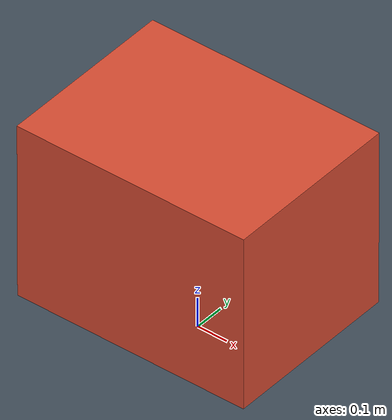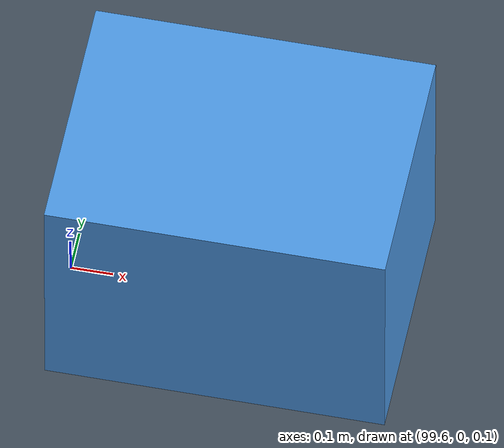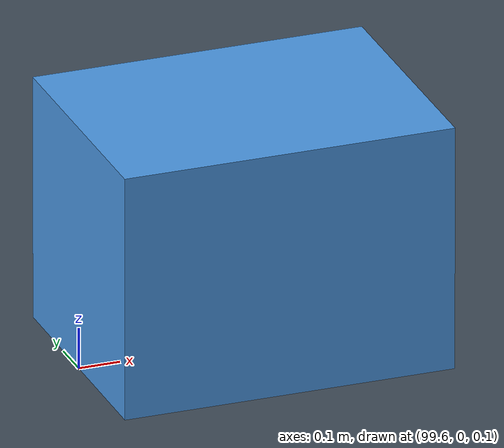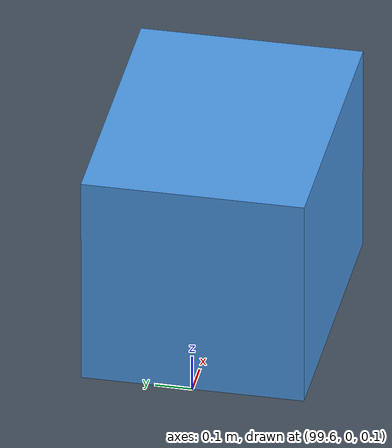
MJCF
<mujoco model="hermes_mujoco_brake_reference">
  <compiler angle="radian" inertiafromgeom="true"/>
  <option timestep="0.01" integrator="implicitfast" solver="Newton" iterations="100">
    <flag fwdinv="enable" autoreset="disable"/>
  </option>

  <custom>
    <text name="lead_actor_role" data="scripted-kinematic; behavior_realism_claim=false"/>
  </custom>

  <worldbody>
    <geom name="floor" type="plane" size="120 5 0.1" rgba="0.25 0.30 0.35 1"/>
    <body name="ego" pos="0 0 0.4">
      <joint name="ego_drive" type="slide" axis="1 0 0" damping="2" armature="0.1"/>
      <geom name="ego_geom" type="box" size="0.4 0.3 0.3" mass="1400"
            rgba="0.85 0.30 0.20 1"/>
    </body>
    <!-- The lead servo is a scripted-kinematic reference, not a behaving agent. -->
    <body name="lead" pos="100 0 0.4">
      <joint name="lead_drive" type="slide" axis="1 0 0" damping="0" armature="0.1"/>
      <geom name="lead_geom" type="box" size="0.4 0.3 0.3" mass="1400"
            rgba="0.30 0.60 0.90 1"/>
    </body>
  </worldbody>

  <actuator>
    <motor name="ego_motor" joint="ego_drive" gear="1" ctrllimited="true"
           ctrlrange="-8000 6000"/>
    <velocity name="lead_velocity_servo" joint="lead_drive" kv="30000"
              ctrllimited="true" ctrlrange="0 40"
              forcelimited="true" forcerange="-100000 100000"/>
  </actuator>
</mujoco>
